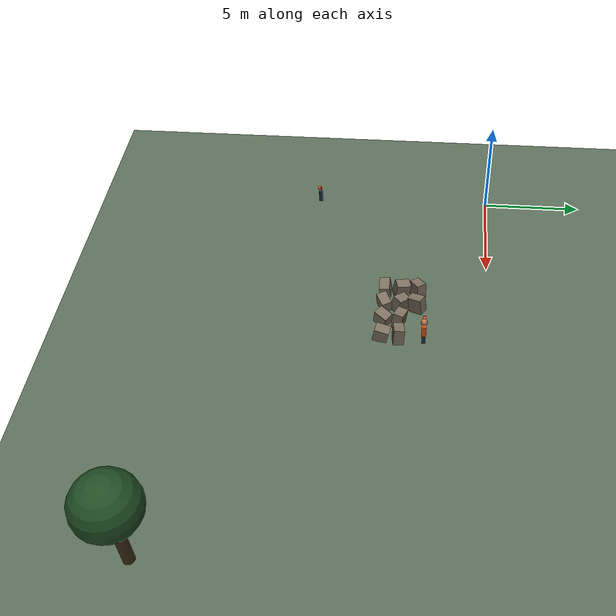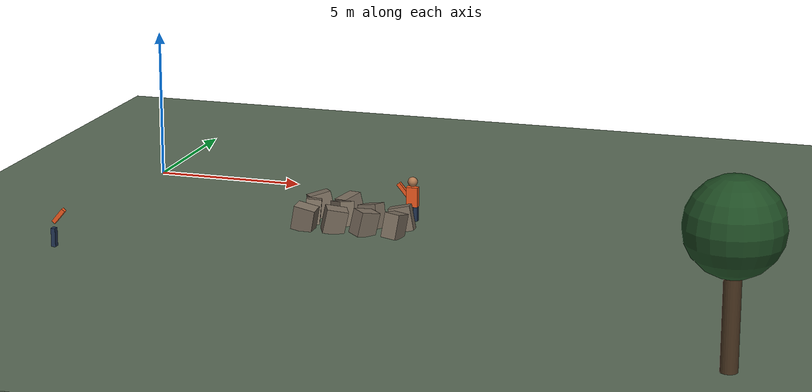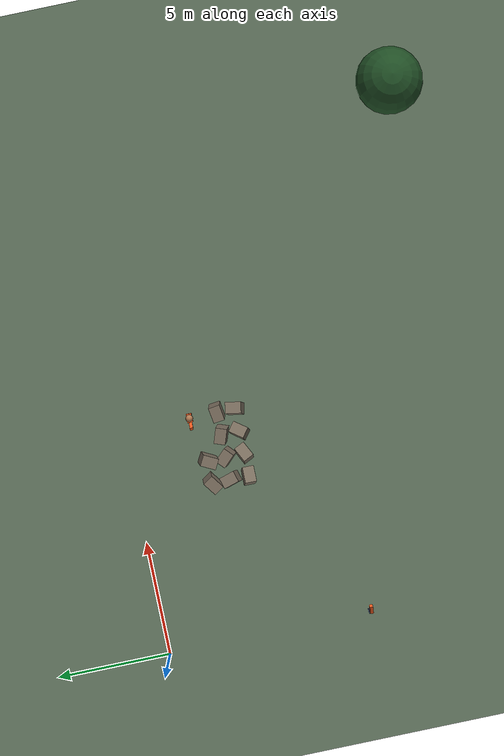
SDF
<sdf version="1.9">
 <world name="disaster_zone">
  <model name="ground">
   <static>true</static>
   <pose>0 0 -0.15 0 0 0</pose>
   <link name="body">
    <visual name="visual">
     <geometry><box><size>90 75 0.3</size></box></geometry>
     <material><ambient>.35 .42 .34 1</ambient><diffuse>.35 .42 .34 1</diffuse></material>
    </visual>
    <collision name="collision"><geometry><box><size>90 75 0.3</size></box></geometry></collision>
   </link>
  </model>
  <model name="rubble_0">
   <static>true</static>
   <pose>7 -5.0 0.4 .1 .2 0.0</pose>
   <link name="body">
    <visual name="visual">
     <geometry><box><size>0.7 0.5 0.8</size></box></geometry>
     <material><ambient>.48 .43 .37 1</ambient><diffuse>.48 .43 .37 1</diffuse></material>
    </visual>
    <collision name="collision"><geometry><box><size>0.7 0.5 0.8</size></box></geometry></collision>
   </link>
  </model>
  <model name="rubble_1">
   <static>true</static>
   <pose>8 -5.0 0.4 .1 .2 0.47</pose>
   <link name="body">
    <visual name="visual">
     <geometry><box><size>0.7 0.5 0.8</size></box></geometry>
     <material><ambient>.48 .43 .37 1</ambient><diffuse>.48 .43 .37 1</diffuse></material>
    </visual>
    <collision name="collision"><geometry><box><size>0.7 0.5 0.8</size></box></geometry></collision>
   </link>
  </model>
  <model name="rubble_2">
   <static>true</static>
   <pose>9 -5.0 0.4 .1 .2 0.94</pose>
   <link name="body">
    <visual name="visual">
     <geometry><box><size>0.7 0.5 0.8</size></box></geometry>
     <material><ambient>.48 .43 .37 1</ambient><diffuse>.48 .43 .37 1</diffuse></material>
    </visual>
    <collision name="collision"><geometry><box><size>0.7 0.5 0.8</size></box></geometry></collision>
   </link>
  </model>
  <model name="rubble_3">
   <static>true</static>
   <pose>10 -5.0 0.4 .1 .2 1.41</pose>
   <link name="body">
    <visual name="visual">
     <geometry><box><size>0.7 0.5 0.8</size></box></geometry>
     <material><ambient>.48 .43 .37 1</ambient><diffuse>.48 .43 .37 1</diffuse></material>
    </visual>
    <collision name="collision"><geometry><box><size>0.7 0.5 0.8</size></box></geometry></collision>
   </link>
  </model>
  <model name="rubble_4">
   <static>true</static>
   <pose>7 -4.2 0.4 .1 .2 1.88</pose>
   <link name="body">
    <visual name="visual">
     <geometry><box><size>0.7 0.5 0.8</size></box></geometry>
     <material><ambient>.48 .43 .37 1</ambient><diffuse>.48 .43 .37 1</diffuse></material>
    </visual>
    <collision name="collision"><geometry><box><size>0.7 0.5 0.8</size></box></geometry></collision>
   </link>
  </model>
  <model name="rubble_5">
   <static>true</static>
   <pose>8 -4.2 0.4 .1 .2 2.3499999999999996</pose>
   <link name="body">
    <visual name="visual">
     <geometry><box><size>0.7 0.5 0.8</size></box></geometry>
     <material><ambient>.48 .43 .37 1</ambient><diffuse>.48 .43 .37 1</diffuse></material>
    </visual>
    <collision name="collision"><geometry><box><size>0.7 0.5 0.8</size></box></geometry></collision>
   </link>
  </model>
  <model name="rubble_6">
   <static>true</static>
   <pose>9 -4.2 0.4 .1 .2 2.82</pose>
   <link name="body">
    <visual name="visual">
     <geometry><box><size>0.7 0.5 0.8</size></box></geometry>
     <material><ambient>.48 .43 .37 1</ambient><diffuse>.48 .43 .37 1</diffuse></material>
    </visual>
    <collision name="collision"><geometry><box><size>0.7 0.5 0.8</size></box></geometry></collision>
   </link>
  </model>
  <model name="rubble_7">
   <static>true</static>
   <pose>10 -4.2 0.4 .1 .2 3.29</pose>
   <link name="body">
    <visual name="visual">
     <geometry><box><size>0.7 0.5 0.8</size></box></geometry>
     <material><ambient>.48 .43 .37 1</ambient><diffuse>.48 .43 .37 1</diffuse></material>
    </visual>
    <collision name="collision"><geometry><box><size>0.7 0.5 0.8</size></box></geometry></collision>
   </link>
  </model>
  <model name="rubble_8">
   <static>true</static>
   <pose>7 -3.4 0.4 .1 .2 3.76</pose>
   <link name="body">
    <visual name="visual">
     <geometry><box><size>0.7 0.5 0.8</size></box></geometry>
     <material><ambient>.48 .43 .37 1</ambient><diffuse>.48 .43 .37 1</diffuse></material>
    </visual>
    <collision name="collision"><geometry><box><size>0.7 0.5 0.8</size></box></geometry></collision>
   </link>
  </model>
  <model name="rubble_9">
   <static>true</static>
   <pose>8 -3.4 0.4 .1 .2 4.2299999999999995</pose>
   <link name="body">
    <visual name="visual">
     <geometry><box><size>0.7 0.5 0.8</size></box></geometry>
     <material><ambient>.48 .43 .37 1</ambient><diffuse>.48 .43 .37 1</diffuse></material>
    </visual>
    <collision name="collision"><geometry><box><size>0.7 0.5 0.8</size></box></geometry></collision>
   </link>
  </model>
  <model name="tree_trunk_2">
   <static>true</static>
   <pose>22 -14 1.5 0 0 0</pose>
   <link name="body">
    <visual name="visual">
     <geometry><cylinder><radius>0.25</radius><length>3</length></cylinder></geometry>
     <material><ambient>.28 .20 .12 1</ambient><diffuse>.28 .20 .12 1</diffuse></material>
    </visual>
    <collision name="collision">
     <geometry><cylinder><radius>0.25</radius><length>3</length></cylinder></geometry>
    </collision>
   </link>
  </model>
  <model name="tree_crown_2">
   <static>true</static>
   <pose>22 -14 4 0 0 0</pose>
   <link name="body">
    <visual name="visual">
     <geometry><sphere><radius>1.4</radius></sphere></geometry>
     <material><ambient>.12 .30 .14 1</ambient><diffuse>.12 .30 .14 1</diffuse></material>
    </visual>
    <collision name="collision"><geometry><sphere><radius>1.4</radius></sphere></geometry></collision>
   </link>
  </model>
  <model name="SURVIVOR_02_leg1">
   <static>true</static>
   <pose>0.11 -9 0.3 0 0 0</pose>
   <link name="body">
    <visual name="visual">
     <geometry><box><size>0.14 0.18 0.6</size></box></geometry>
     <material><ambient>.13 .20 .32 1</ambient><diffuse>.13 .20 .32 1</diffuse></material>
    </visual>
    <collision name="collision"><geometry><box><size>0.14 0.18 0.6</size></box></geometry></collision>
   </link>
  </model>
  <model name="SURVIVOR_02_arm1">
   <static>true</static>
   <pose>0.3 -9 1 0 0.7 0</pose>
   <link name="body">
    <visual name="visual">
     <geometry><box><size>0.13 0.14 0.55</size></box></geometry>
     <material><ambient>.93 .35 .12 1</ambient><diffuse>.93 .35 .12 1</diffuse></material>
    </visual>
    <collision name="collision"><geometry><box><size>0.13 0.14 0.55</size></box></geometry></collision>
   </link>
  </model>
  <model name="SURVIVOR_03_torso">
   <static>true</static>
   <pose>10 -3 0.8 0 0 0</pose>
   <link name="body">
    <visual name="visual">
     <geometry><box><size>0.38 0.22 0.65</size></box></geometry>
     <material><ambient>.93 .35 .12 1</ambient><diffuse>.93 .35 .12 1</diffuse></material>
    </visual>
    <collision name="collision"><geometry><box><size>0.38 0.22 0.65</size></box></geometry></collision>
   </link>
  </model>
  <model name="SURVIVOR_03_head">
   <static>true</static>
   <pose>10 -3 1.3 0 0 0</pose>
   <link name="body">
    <visual name="visual">
     <geometry><sphere><radius>0.16</radius></sphere></geometry>
     <material><ambient>.69 .47 .31 1</ambient><diffuse>.69 .47 .31 1</diffuse></material>
    </visual>
    <collision name="collision"><geometry><sphere><radius>0.16</radius></sphere></geometry></collision>
   </link>
  </model>
  <model name="SURVIVOR_03_leg-1">
   <static>true</static>
   <pose>9.89 -3 0.3 0 0 0</pose>
   <link name="body">
    <visual name="visual">
     <geometry><box><size>0.14 0.18 0.6</size></box></geometry>
     <material><ambient>.13 .20 .32 1</ambient><diffuse>.13 .20 .32 1</diffuse></material>
    </visual>
    <collision name="collision"><geometry><box><size>0.14 0.18 0.6</size></box></geometry></collision>
   </link>
  </model>
  <model name="SURVIVOR_03_arm-1">
   <static>true</static>
   <pose>9.7 -3 1 0 -0.7 0</pose>
   <link name="body">
    <visual name="visual">
     <geometry><box><size>0.13 0.14 0.55</size></box></geometry>
     <material><ambient>.93 .35 .12 1</ambient><diffuse>.93 .35 .12 1</diffuse></material>
    </visual>
    <collision name="collision"><geometry><box><size>0.13 0.14 0.55</size></box></geometry></collision>
   </link>
  </model>
  <model name="SURVIVOR_03_leg1">
   <static>true</static>
   <pose>10.11 -3 0.3 0 0 0</pose>
   <link name="body">
    <visual name="visual">
     <geometry><box><size>0.14 0.18 0.6</size></box></geometry>
     <material><ambient>.13 .20 .32 1</ambient><diffuse>.13 .20 .32 1</diffuse></material>
    </visual>
    <collision name="collision"><geometry><box><size>0.14 0.18 0.6</size></box></geometry></collision>
   </link>
  </model>
 </world>
</sdf>
